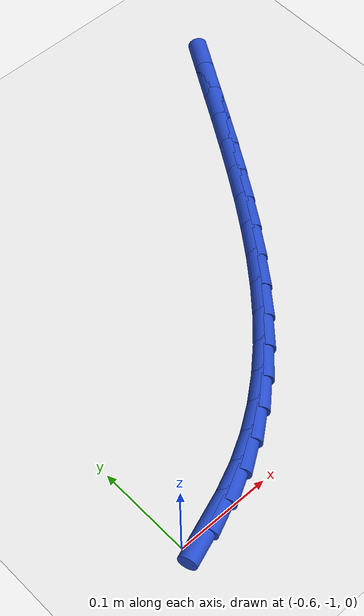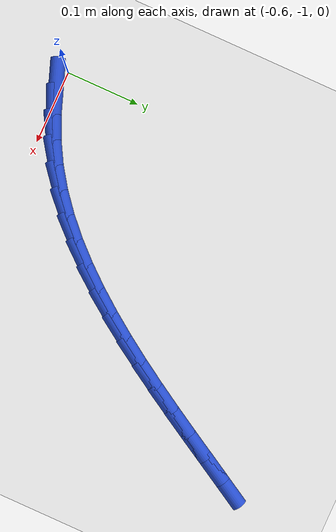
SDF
<sdf version="1.6">
 <world name="default">
  <model name="ground_plane">
   <static>1</static>
   <link name="link">
    <collision name="collision">
     <geometry><plane><normal>0 0 1</normal><size>100 100</size></plane></geometry>
     <surface><friction><ode><mu>100</mu><mu2>50</mu2></ode></friction></surface>
    </collision>
    <visual name="visual">
     <cast_shadows>0</cast_shadows>
     <geometry><plane><normal>0 0 1</normal><size>100 100</size></plane></geometry>
     <material>
      <script><uri>file://media/materials/scripts/gazebo.material</uri><name>Gazebo/WhiteGlow</name></script>
     </material>
    </visual>
   </link>
  </model>
  <model name="line">
   <link name="link_166">
    <pose>-0.57197399990631 -1.0039637437775992 0.01 0 1.57 0.34721881443986047</pose>
    <collision name="collision">
     <geometry><cylinder><radius>0.01</radius><length>0.08</length></cylinder></geometry>
    </collision>
    <visual name="visual">
     <material>
      <script><name>Gazebo/Blue</name><uri>file://media/materials/scripts/gazebo.material</uri></script>
     </material>
     <geometry><cylinder><radius>0.01</radius><length>0.08</length></cylinder></geometry>
    </visual>
   </link>
   <link name="link_167">
    <pose>-0.5401712363831035 -0.9924549623748781 0.01 0 1.57 0.42061761578853063</pose>
    <collision name="collision">
     <geometry><cylinder><radius>0.01</radius><length>0.08</length></cylinder></geometry>
    </collision>
    <visual name="visual">
     <material>
      <script><name>Gazebo/Blue</name><uri>file://media/materials/scripts/gazebo.material</uri></script>
     </material>
     <geometry><cylinder><radius>0.01</radius><length>0.08</length></cylinder></geometry>
    </visual>
   </link>
   <link name="link_168">
    <pose>-0.5096793311266493 -0.9788155204204854 0.01 0 1.57 0.51215188455118</pose>
    <collision name="collision">
     <geometry><cylinder><radius>0.01</radius><length>0.08</length></cylinder></geometry>
    </collision>
    <visual name="visual">
     <material>
      <script><name>Gazebo/Blue</name><uri>file://media/materials/scripts/gazebo.material</uri></script>
     </material>
     <geometry><cylinder><radius>0.01</radius><length>0.08</length></cylinder></geometry>
    </visual>
   </link>
   <link name="link_169">
    <pose>-0.48065859126631294 -0.9625004291630184 0.01 0 1.57 0.601570287975457</pose>
    <collision name="collision">
     <geometry><cylinder><radius>0.01</radius><length>0.08</length></cylinder></geometry>
    </collision>
    <visual name="visual">
     <material>
      <script><name>Gazebo/Blue</name><uri>file://media/materials/scripts/gazebo.material</uri></script>
     </material>
     <geometry><cylinder><radius>0.01</radius><length>0.08</length></cylinder></geometry>
    </visual>
   </link>
   <link name="link_170">
    <pose>-0.45306826705603315 -0.9435612017532303 0.01 0 1.57 0.6821035730761691</pose>
    <collision name="collision">
     <geometry><cylinder><radius>0.01</radius><length>0.08</length></cylinder></geometry>
    </collision>
    <visual name="visual">
     <material>
      <script><name>Gazebo/Blue</name><uri>file://media/materials/scripts/gazebo.material</uri></script>
     </material>
     <geometry><cylinder><radius>0.01</radius><length>0.08</length></cylinder></geometry>
    </visual>
   </link>
   <link name="link_171">
    <pose>-0.4268059312179633 -0.9222323381954849 0.01 0 1.57 0.7534054578005595</pose>
    <collision name="collision">
     <geometry><cylinder><radius>0.01</radius><length>0.08</length></cylinder></geometry>
    </collision>
    <visual name="visual">
     <material>
      <script><name>Gazebo/Blue</name><uri>file://media/materials/scripts/gazebo.material</uri></script>
     </material>
     <geometry><cylinder><radius>0.01</radius><length>0.08</length></cylinder></geometry>
    </visual>
   </link>
   <link name="link_172">
    <pose>-0.40176914018536397 -0.8987483868205473 0.01 0 1.57 0.8156171865955416</pose>
    <collision name="collision">
     <geometry><cylinder><radius>0.01</radius><length>0.08</length></cylinder></geometry>
    </collision>
    <visual name="visual">
     <material>
      <script><name>Gazebo/Blue</name><uri>file://media/materials/scripts/gazebo.material</uri></script>
     </material>
     <geometry><cylinder><radius>0.01</radius><length>0.08</length></cylinder></geometry>
    </visual>
   </link>
   <link name="link_173">
    <pose>-0.37785545039149543 -0.8733438959591823 0.01 0 1.57 0.8691782773942281</pose>
    <collision name="collision">
     <geometry><cylinder><radius>0.01</radius><length>0.08</length></cylinder></geometry>
    </collision>
    <visual name="visual">
     <material>
      <script><name>Gazebo/Blue</name><uri>file://media/materials/scripts/gazebo.material</uri></script>
     </material>
     <geometry><cylinder><radius>0.01</radius><length>0.08</length></cylinder></geometry>
    </visual>
   </link>
   <link name="link_174">
    <pose>-0.3549624182696182 -0.8462534139421561 0.01 0 1.57 0.9146718097332958</pose>
    <collision name="collision">
     <geometry><cylinder><radius>0.01</radius><length>0.08</length></cylinder></geometry>
    </collision>
    <visual name="visual">
     <material>
      <script><name>Gazebo/Blue</name><uri>file://media/materials/scripts/gazebo.material</uri></script>
     </material>
     <geometry><cylinder><radius>0.01</radius><length>0.08</length></cylinder></geometry>
    </visual>
   </link>
   <link name="link_175">
    <pose>-0.3329876002529928 -0.8177114891002338 0.01 0 1.57 0.9527141383465285</pose>
    <collision name="collision">
     <geometry><cylinder><radius>0.01</radius><length>0.08</length></cylinder></geometry>
    </collision>
    <visual name="visual">
     <material>
      <script><name>Gazebo/Blue</name><uri>file://media/materials/scripts/gazebo.material</uri></script>
     </material>
     <geometry><cylinder><radius>0.01</radius><length>0.08</length></cylinder></geometry>
    </visual>
   </link>
   <link name="link_176">
    <pose>-0.3118285527748796 -0.7879526697641811 0.01 0 1.57 0.9838842802124446</pose>
    <collision name="collision">
     <geometry><cylinder><radius>0.01</radius><length>0.08</length></cylinder></geometry>
    </collision>
    <visual name="visual">
     <material>
      <script><name>Gazebo/Blue</name><uri>file://media/materials/scripts/gazebo.material</uri></script>
     </material>
     <geometry><cylinder><radius>0.01</radius><length>0.08</length></cylinder></geometry>
    </visual>
   </link>
   <link name="link_177">
    <pose>-0.2913828322685392 -0.7572115042647635 0.01 0 1.57 1.0086825578721084</pose>
    <collision name="collision">
     <geometry><cylinder><radius>0.01</radius><length>0.08</length></cylinder></geometry>
    </collision>
    <visual name="visual">
     <material>
      <script><name>Gazebo/Blue</name><uri>file://media/materials/scripts/gazebo.material</uri></script>
     </material>
     <geometry><cylinder><radius>0.01</radius><length>0.08</length></cylinder></geometry>
    </visual>
   </link>
   <link name="link_178">
    <pose>-0.27154799516723205 -0.7257225409327467 0.01 0 1.57 1.0275081382182287</pose>
    <collision name="collision">
     <geometry><cylinder><radius>0.01</radius><length>0.08</length></cylinder></geometry>
    </collision>
    <visual name="visual">
     <material>
      <script><name>Gazebo/Blue</name><uri>file://media/materials/scripts/gazebo.material</uri></script>
     </material>
     <geometry><cylinder><radius>0.01</radius><length>0.08</length></cylinder></geometry>
    </visual>
   </link>
   <link name="link_179">
    <pose>-0.2522215979042184 -0.6937203280988957 0.01 0 1.57 1.0406472655595396</pose>
    <collision name="collision">
     <geometry><cylinder><radius>0.01</radius><length>0.08</length></cylinder></geometry>
    </collision>
    <visual name="visual">
     <material>
      <script><name>Gazebo/Blue</name><uri>file://media/materials/scripts/gazebo.material</uri></script>
     </material>
     <geometry><cylinder><radius>0.01</radius><length>0.08</length></cylinder></geometry>
    </visual>
   </link>
   <link name="link_180">
    <pose>-0.23330119691275883 -0.6614394140939762 0.01 0 1.57 1.048266369162098</pose>
    <collision name="collision">
     <geometry><cylinder><radius>0.01</radius><length>0.08</length></cylinder></geometry>
    </collision>
    <visual name="visual">
     <material>
      <script><name>Gazebo/Blue</name><uri>file://media/materials/scripts/gazebo.material</uri></script>
     </material>
     <geometry><cylinder><radius>0.01</radius><length>0.08</length></cylinder></geometry>
    </visual>
   </link>
   <link name="link_181">
    <pose>-0.21468434862611388 -0.6291143472487538 0.01 0 1.57 1.0504061355467007</pose>
    <collision name="collision">
     <geometry><cylinder><radius>0.01</radius><length>0.08</length></cylinder></geometry>
    </collision>
    <visual name="visual">
     <material>
      <script><name>Gazebo/Blue</name><uri>file://media/materials/scripts/gazebo.material</uri></script>
     </material>
     <geometry><cylinder><radius>0.01</radius><length>0.08</length></cylinder></geometry>
    </visual>
   </link>
   <link name="link_182">
    <pose>-0.19626860947754388 -0.5969796758939938 0.01 0 1.57 1.0476420254149015</pose>
    <collision name="collision">
     <geometry><cylinder><radius>0.01</radius><length>0.08</length></cylinder></geometry>
    </collision>
    <visual name="visual">
     <material>
      <script><name>Gazebo/Blue</name><uri>file://media/materials/scripts/gazebo.material</uri></script>
     </material>
     <geometry><cylinder><radius>0.01</radius><length>0.08</length></cylinder></geometry>
    </visual>
   </link>
  </model>
 </world>
</sdf>
